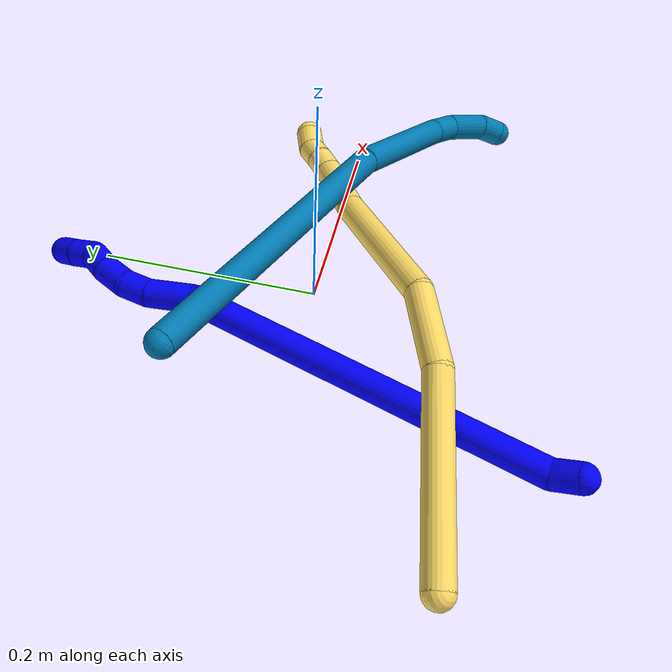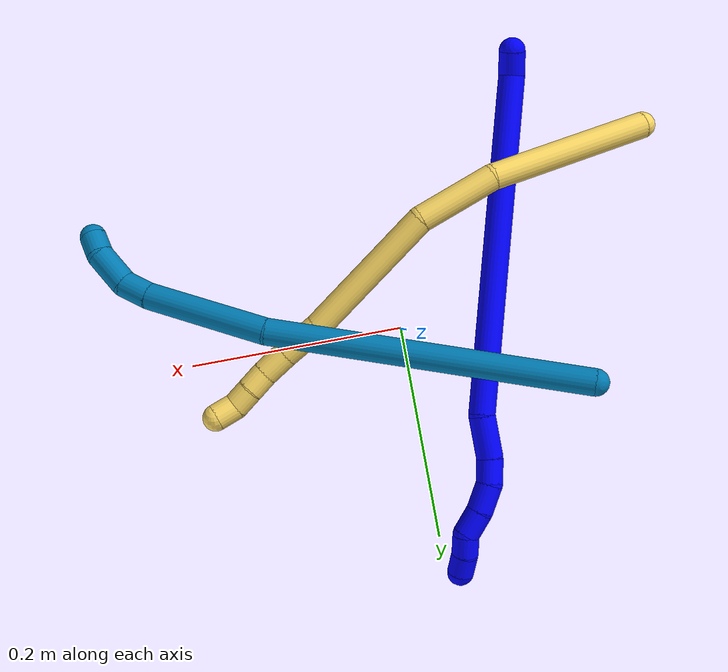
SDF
<sdf version="1.7">
 <world name="default">
  <model name="1">
   <static>0</static>
   <link name="1">
    <collision name="collision-cylinder-e_1_1_4">
     <pose>0.001793 0.009902 -0.005923 -2.10984 0.15415 -0.270697</pose>
     <geometry><cylinder><radius>0.0125</radius><length>0.023353</length></cylinder></geometry>
     <surface>
      <friction><ode><mu>1.16</mu><mu2>1.16</mu2><slip1>0</slip1><slip2>0</slip2></ode></friction>
      <contact><ode><kp>1e+06</kp><kd>1</kd><max_vel>0</max_vel><min_depth>0.001</min_depth></ode></contact>
     </surface>
    </collision>
    <visual name="visual-cylinder-e_1_1_4">
     <pose>0.001793 0.009902 -0.005923 -2.10984 0.15415 -0.270697</pose>
     <geometry><cylinder><radius>0.0125</radius><length>0.023353</length></cylinder></geometry>
     <material><ambient>0 0 1 1</ambient></material>
    </visual>
    <collision name="collision-cylinder-e_2_4_5">
     <pose>0.072405 0.161496 -0.038944 -1.75977 0.445119 -0.5343</pose>
     <geometry><cylinder><radius>0.0125</radius><length>0.319669</length></cylinder></geometry>
     <surface>
      <friction><ode><mu>1.16</mu><mu2>1.16</mu2><slip1>0</slip1><slip2>0</slip2></ode></friction>
      <contact><ode><kp>1e+06</kp><kd>1</kd><max_vel>0</max_vel><min_depth>0.001</min_depth></ode></contact>
     </surface>
    </collision>
    <visual name="visual-cylinder-e_2_4_5">
     <pose>0.072405 0.161496 -0.038944 -1.75977 0.445119 -0.5343</pose>
     <geometry><cylinder><radius>0.0125</radius><length>0.319669</length></cylinder></geometry>
     <material><ambient>0 0 1 1</ambient></material>
    </visual>
    <collision name="collision-cylinder-e_3_5_6">
     <pose>0.143889 0.323048 -0.070218 -1.778 0.130573 -0.160758</pose>
     <geometry><cylinder><radius>0.0125</radius><length>0.040936</length></cylinder></geometry>
     <surface>
      <friction><ode><mu>1.16</mu><mu2>1.16</mu2><slip1>0</slip1><slip2>0</slip2></ode></friction>
      <contact><ode><kp>1e+06</kp><kd>1</kd><max_vel>0</max_vel><min_depth>0.001</min_depth></ode></contact>
     </surface>
    </collision>
    <visual name="visual-cylinder-e_3_5_6">
     <pose>0.143889 0.323048 -0.070218 -1.778 0.130573 -0.160758</pose>
     <geometry><cylinder><radius>0.0125</radius><length>0.040936</length></cylinder></geometry>
     <material><ambient>0 0 1 1</ambient></material>
    </visual>
    <collision name="collision-cylinder-e_4_6_7">
     <pose>0.150832 0.353747 -0.076308 -1.74563 0.370662 -0.439777</pose>
     <geometry><cylinder><radius>0.0125</radius><length>0.023621</length></cylinder></geometry>
     <surface>
      <friction><ode><mu>1.16</mu><mu2>1.16</mu2><slip1>0</slip1><slip2>0</slip2></ode></friction>
      <contact><ode><kp>1e+06</kp><kd>1</kd><max_vel>0</max_vel><min_depth>0.001</min_depth></ode></contact>
     </surface>
    </collision>
    <visual name="visual-cylinder-e_4_6_7">
     <pose>0.150832 0.353747 -0.076308 -1.74563 0.370662 -0.439777</pose>
     <geometry><cylinder><radius>0.0125</radius><length>0.023621</length></cylinder></geometry>
     <material><ambient>0 0 1 1</ambient></material>
    </visual>
    <collision name="collision-cylinder-e_5_7_8">
     <pose>0.16307 0.374736 -0.082723 -1.98815 0.622027 -0.917921</pose>
     <geometry><cylinder><radius>0.0125</radius><length>0.02732</length></cylinder></geometry>
     <surface>
      <friction><ode><mu>1.16</mu><mu2>1.16</mu2><slip1>0</slip1><slip2>0</slip2></ode></friction>
      <contact><ode><kp>1e+06</kp><kd>1</kd><max_vel>0</max_vel><min_depth>0.001</min_depth></ode></contact>
     </surface>
    </collision>
    <visual name="visual-cylinder-e_5_7_8">
     <pose>0.16307 0.374736 -0.082723 -1.98815 0.622027 -0.917921</pose>
     <geometry><cylinder><radius>0.0125</radius><length>0.02732</length></cylinder></geometry>
     <material><ambient>0 0 1 1</ambient></material>
    </visual>
    <collision name="collision-cylinder-e_6_8_9">
     <pose>0.179527 0.392421 -0.092339 -2.1672 0.750684 -1.27895</pose>
     <geometry><cylinder><radius>0.0125</radius><length>0.024914</length></cylinder></geometry>
     <surface>
      <friction><ode><mu>1.16</mu><mu2>1.16</mu2><slip1>0</slip1><slip2>0</slip2></ode></friction>
      <contact><ode><kp>1e+06</kp><kd>1</kd><max_vel>0</max_vel><min_depth>0.001</min_depth></ode></contact>
     </surface>
    </collision>
    <visual name="visual-cylinder-e_6_8_9">
     <pose>0.179527 0.392421 -0.092339 -2.1672 0.750684 -1.27895</pose>
     <geometry><cylinder><radius>0.0125</radius><length>0.024914</length></cylinder></geometry>
     <material><ambient>0 0 1 1</ambient></material>
    </visual>
    <collision name="collision-cylinder-e_7_9_10">
     <pose>0.190429 0.408597 -0.102073 -2.0617 0.240753 -0.398285</pose>
     <geometry><cylinder><radius>0.0125</radius><length>0.020174</length></cylinder></geometry>
     <surface>
      <friction><ode><mu>1.16</mu><mu2>1.16</mu2><slip1>0</slip1><slip2>0</slip2></ode></friction>
      <contact><ode><kp>1e+06</kp><kd>1</kd><max_vel>0</max_vel><min_depth>0.001</min_depth></ode></contact>
     </surface>
    </collision>
    <visual name="visual-cylinder-e_7_9_10">
     <pose>0.190429 0.408597 -0.102073 -2.0617 0.240753 -0.398285</pose>
     <geometry><cylinder><radius>0.0125</radius><length>0.020174</length></cylinder></geometry>
     <material><ambient>0 0 1 1</ambient></material>
    </visual>
    <collision name="collision-cylinder-e_8_10_2">
     <pose>0.195998 0.424759 -0.112482 -2.22684 0.321639 -0.63676</pose>
     <geometry><cylinder><radius>0.0125</radius><length>0.020013</length></cylinder></geometry>
     <surface>
      <friction><ode><mu>1.16</mu><mu2>1.16</mu2><slip1>0</slip1><slip2>0</slip2></ode></friction>
      <contact><ode><kp>1e+06</kp><kd>1</kd><max_vel>0</max_vel><min_depth>0.001</min_depth></ode></contact>
     </surface>
    </collision>
    <visual name="visual-cylinder-e_8_10_2">
     <pose>0.195998 0.424759 -0.112482 -2.22684 0.321639 -0.63676</pose>
     <geometry><cylinder><radius>0.0125</radius><length>0.020013</length></cylinder></geometry>
     <material><ambient>0 0 1 1</ambient></material>
    </visual>
    <collision name="collision-sphere-2">
     <pose>0.199161 0.432282 -0.118273 0 -0 0</pose>
     <geometry><sphere><radius>0.0125</radius></sphere></geometry>
     <surface>
      <friction><ode><mu>1.16</mu><mu2>1.16</mu2><slip1>0</slip1><slip2>0</slip2></ode></friction>
      <contact><ode><kp>1e+06</kp><kd>1</kd><max_vel>0</max_vel><min_depth>0.001</min_depth></ode></contact>
     </surface>
    </collision>
    <visual name="visual-sphere-2">
     <pose>0.199161 0.432282 -0.118273 0 -0 0</pose>
     <geometry><sphere><radius>0.0125</radius></sphere></geometry>
     <material><ambient>0 0 1 1</ambient></material>
    </visual>
    <collision name="collision-sphere-10">
     <pose>0.192834 0.417236 -0.106691 0 -0 0</pose>
     <geometry><sphere><radius>0.0125</radius></sphere></geometry>
     <surface>
      <friction><ode><mu>1.16</mu><mu2>1.16</mu2><slip1>0</slip1><slip2>0</slip2></ode></friction>
      <contact><ode><kp>1e+06</kp><kd>1</kd><max_vel>0</max_vel><min_depth>0.001</min_depth></ode></contact>
     </surface>
    </collision>
    <visual name="visual-sphere-10">
     <pose>0.192834 0.417236 -0.106691 0 -0 0</pose>
     <geometry><sphere><radius>0.0125</radius></sphere></geometry>
     <material><ambient>0 0 1 1</ambient></material>
    </visual>
    <collision name="collision-sphere-9">
     <pose>0.188024 0.399958 -0.097455 0 -0 0</pose>
     <geometry><sphere><radius>0.0125</radius></sphere></geometry>
     <surface>
      <friction><ode><mu>1.16</mu><mu2>1.16</mu2><slip1>0</slip1><slip2>0</slip2></ode></friction>
      <contact><ode><kp>1e+06</kp><kd>1</kd><max_vel>0</max_vel><min_depth>0.001</min_depth></ode></contact>
     </surface>
    </collision>
    <visual name="visual-sphere-9">
     <pose>0.188024 0.399958 -0.097455 0 -0 0</pose>
     <geometry><sphere><radius>0.0125</radius></sphere></geometry>
     <material><ambient>0 0 1 1</ambient></material>
    </visual>
    <collision name="collision-sphere-4">
     <pose>0.003586 0.019804 -0.011845 0 -0 0</pose>
     <geometry><sphere><radius>0.0125</radius></sphere></geometry>
     <surface>
      <friction><ode><mu>1.16</mu><mu2>1.16</mu2><slip1>0</slip1><slip2>0</slip2></ode></friction>
      <contact><ode><kp>1e+06</kp><kd>1</kd><max_vel>0</max_vel><min_depth>0.001</min_depth></ode></contact>
     </surface>
    </collision>
    <visual name="visual-sphere-4">
     <pose>0.003586 0.019804 -0.011845 0 -0 0</pose>
     <geometry><sphere><radius>0.0125</radius></sphere></geometry>
     <material><ambient>0 0 1 1</ambient></material>
    </visual>
    <collision name="collision-sphere-1">
     <geometry><sphere><radius>0.0125</radius></sphere></geometry>
     <surface>
      <friction><ode><mu>1.16</mu><mu2>1.16</mu2><slip1>0</slip1><slip2>0</slip2></ode></friction>
      <contact><ode><kp>1e+06</kp><kd>1</kd><max_vel>0</max_vel><min_depth>0.001</min_depth></ode></contact>
     </surface>
    </collision>
    <visual name="visual-sphere-1">
     <geometry><sphere><radius>0.0125</radius></sphere></geometry>
     <material><ambient>0 0 1 1</ambient></material>
    </visual>
    <collision name="collision-sphere-8">
     <pose>0.171029 0.384885 -0.087223 0 -0 0</pose>
     <geometry><sphere><radius>0.0125</radius></sphere></geometry>
     <surface>
      <friction><ode><mu>1.16</mu><mu2>1.16</mu2><slip1>0</slip1><slip2>0</slip2></ode></friction>
      <contact><ode><kp>1e+06</kp><kd>1</kd><max_vel>0</max_vel><min_depth>0.001</min_depth></ode></contact>
     </surface>
    </collision>
    <visual name="visual-sphere-8">
     <pose>0.171029 0.384885 -0.087223 0 -0 0</pose>
     <geometry><sphere><radius>0.0125</radius></sphere></geometry>
     <material><ambient>0 0 1 1</ambient></material>
    </visual>
    <collision name="collision-sphere-5">
     <pose>0.141224 0.303188 -0.066044 0 -0 0</pose>
     <geometry><sphere><radius>0.0125</radius></sphere></geometry>
     <surface>
      <friction><ode><mu>1.16</mu><mu2>1.16</mu2><slip1>0</slip1><slip2>0</slip2></ode></friction>
      <contact><ode><kp>1e+06</kp><kd>1</kd><max_vel>0</max_vel><min_depth>0.001</min_depth></ode></contact>
     </surface>
    </collision>
    <visual name="visual-sphere-5">
     <pose>0.141224 0.303188 -0.066044 0 -0 0</pose>
     <geometry><sphere><radius>0.0125</radius></sphere></geometry>
     <material><ambient>0 0 1 1</ambient></material>
    </visual>
    <collision name="collision-sphere-6">
     <pose>0.146554 0.342907 -0.074393 0 -0 0</pose>
     <geometry><sphere><radius>0.0125</radius></sphere></geometry>
     <surface>
      <friction><ode><mu>1.16</mu><mu2>1.16</mu2><slip1>0</slip1><slip2>0</slip2></ode></friction>
      <contact><ode><kp>1e+06</kp><kd>1</kd><max_vel>0</max_vel><min_depth>0.001</min_depth></ode></contact>
     </surface>
    </collision>
    <visual name="visual-sphere-6">
     <pose>0.146554 0.342907 -0.074393 0 -0 0</pose>
     <geometry><sphere><radius>0.0125</radius></sphere></geometry>
     <material><ambient>0 0 1 1</ambient></material>
    </visual>
    <collision name="collision-sphere-7">
     <pose>0.15511 0.364588 -0.078223 0 -0 0</pose>
     <geometry><sphere><radius>0.0125</radius></sphere></geometry>
     <surface>
      <friction><ode><mu>1.16</mu><mu2>1.16</mu2><slip1>0</slip1><slip2>0</slip2></ode></friction>
      <contact><ode><kp>1e+06</kp><kd>1</kd><max_vel>0</max_vel><min_depth>0.001</min_depth></ode></contact>
     </surface>
    </collision>
    <visual name="visual-sphere-7">
     <pose>0.15511 0.364588 -0.078223 0 -0 0</pose>
     <geometry><sphere><radius>0.0125</radius></sphere></geometry>
     <material><ambient>0 0 1 1</ambient></material>
    </visual>
    <inertial>
     <pose>0.098665 0.22039 -0.052271 0 -0 0</pose>
     <mass>0.5</mass>
     <inertia>
      <ixx>0.000891</ixx>
      <ixy>0</ixy>
      <ixz>0</ixz>
      <iyy>-0.001085</iyy>
      <iyz>0</iyz>
      <izz>-0.003633</izz>
     </inertia>
    </inertial>
   </link>
   <pose>-0.149076 -0.236569 0.019902 0.065143 -0.385436 0.181761</pose>
  </model>
  <model name="5">
   <static>0</static>
   <link name="5">
    <collision name="collision-cylinder-e_1_1_4">
     <pose>0.074936 0.028104 0.008711 -1.27024 1.19665 -0.931108</pose>
     <geometry><cylinder><radius>0.0125</radius><length>0.161011</length></cylinder></geometry>
     <surface>
      <friction><ode><mu>1.16</mu><mu2>1.16</mu2><slip1>0</slip1><slip2>0</slip2></ode></friction>
      <contact><ode><kp>1e+06</kp><kd>1</kd><max_vel>0</max_vel><min_depth>0.001</min_depth></ode></contact>
     </surface>
    </collision>
    <visual name="visual-cylinder-e_1_1_4">
     <pose>0.074936 0.028104 0.008711 -1.27024 1.19665 -0.931108</pose>
     <geometry><cylinder><radius>0.0125</radius><length>0.161011</length></cylinder></geometry>
     <material><ambient>1 0.858824 0.4 1</ambient></material>
    </visual>
    <collision name="collision-cylinder-e_2_4_5">
     <pose>0.184969 0.069731 0.01149 -1.9842 1.17254 -1.58728</pose>
     <geometry><cylinder><radius>0.0125</radius><length>0.076155</length></cylinder></geometry>
     <surface>
      <friction><ode><mu>1.16</mu><mu2>1.16</mu2><slip1>0</slip1><slip2>0</slip2></ode></friction>
      <contact><ode><kp>1e+06</kp><kd>1</kd><max_vel>0</max_vel><min_depth>0.001</min_depth></ode></contact>
     </surface>
    </collision>
    <visual name="visual-cylinder-e_2_4_5">
     <pose>0.184969 0.069731 0.01149 -1.9842 1.17254 -1.58728</pose>
     <geometry><cylinder><radius>0.0125</radius><length>0.076155</length></cylinder></geometry>
     <material><ambient>1 0.858824 0.4 1</ambient></material>
    </visual>
    <collision name="collision-cylinder-e_3_5_6">
     <pose>0.273841 0.108723 -0.027222 -2.48104 0.913399 -1.92317</pose>
     <geometry><cylinder><radius>0.0125</radius><length>0.135864</length></cylinder></geometry>
     <surface>
      <friction><ode><mu>1.16</mu><mu2>1.16</mu2><slip1>0</slip1><slip2>0</slip2></ode></friction>
      <contact><ode><kp>1e+06</kp><kd>1</kd><max_vel>0</max_vel><min_depth>0.001</min_depth></ode></contact>
     </surface>
    </collision>
    <visual name="visual-cylinder-e_3_5_6">
     <pose>0.273841 0.108723 -0.027222 -2.48104 0.913399 -1.92317</pose>
     <geometry><cylinder><radius>0.0125</radius><length>0.135864</length></cylinder></geometry>
     <material><ambient>1 0.858824 0.4 1</ambient></material>
    </visual>
    <collision name="collision-cylinder-e_4_6_7">
     <pose>0.344231 0.14063 -0.068044 -2.46668 1.01575 -2.01662</pose>
     <geometry><cylinder><radius>0.0125</radius><length>0.039101</length></cylinder></geometry>
     <surface>
      <friction><ode><mu>1.16</mu><mu2>1.16</mu2><slip1>0</slip1><slip2>0</slip2></ode></friction>
      <contact><ode><kp>1e+06</kp><kd>1</kd><max_vel>0</max_vel><min_depth>0.001</min_depth></ode></contact>
     </surface>
    </collision>
    <visual name="visual-cylinder-e_4_6_7">
     <pose>0.344231 0.14063 -0.068044 -2.46668 1.01575 -2.01662</pose>
     <geometry><cylinder><radius>0.0125</radius><length>0.039101</length></cylinder></geometry>
     <material><ambient>1 0.858824 0.4 1</ambient></material>
    </visual>
    <collision name="collision-cylinder-e_5_7_8">
     <pose>0.371727 0.152157 -0.081324 -2.37036 0.979702 -1.84017</pose>
     <geometry><cylinder><radius>0.0125</radius><length>0.026208</length></cylinder></geometry>
     <surface>
      <friction><ode><mu>1.16</mu><mu2>1.16</mu2><slip1>0</slip1><slip2>0</slip2></ode></friction>
      <contact><ode><kp>1e+06</kp><kd>1</kd><max_vel>0</max_vel><min_depth>0.001</min_depth></ode></contact>
     </surface>
    </collision>
    <visual name="visual-cylinder-e_5_7_8">
     <pose>0.371727 0.152157 -0.081324 -2.37036 0.979702 -1.84017</pose>
     <geometry><cylinder><radius>0.0125</radius><length>0.026208</length></cylinder></geometry>
     <material><ambient>1 0.858824 0.4 1</ambient></material>
    </visual>
    <collision name="collision-cylinder-e_6_8_9">
     <pose>0.390573 0.162444 -0.090536 -2.22377 0.883152 -1.52657</pose>
     <geometry><cylinder><radius>0.0125</radius><length>0.020617</length></cylinder></geometry>
     <surface>
      <friction><ode><mu>1.16</mu><mu2>1.16</mu2><slip1>0</slip1><slip2>0</slip2></ode></friction>
      <contact><ode><kp>1e+06</kp><kd>1</kd><max_vel>0</max_vel><min_depth>0.001</min_depth></ode></contact>
     </surface>
    </collision>
    <visual name="visual-cylinder-e_6_8_9">
     <pose>0.390573 0.162444 -0.090536 -2.22377 0.883152 -1.52657</pose>
     <geometry><cylinder><radius>0.0125</radius><length>0.020617</length></cylinder></geometry>
     <material><ambient>1 0.858824 0.4 1</ambient></material>
    </visual>
    <collision name="collision-cylinder-e_7_9_10">
     <pose>0.406349 0.171912 -0.09924 -2.40696 0.886485 -1.77938</pose>
     <geometry><cylinder><radius>0.0125</radius><length>0.02016</length></cylinder></geometry>
     <surface>
      <friction><ode><mu>1.16</mu><mu2>1.16</mu2><slip1>0</slip1><slip2>0</slip2></ode></friction>
      <contact><ode><kp>1e+06</kp><kd>1</kd><max_vel>0</max_vel><min_depth>0.001</min_depth></ode></contact>
     </surface>
    </collision>
    <visual name="visual-cylinder-e_7_9_10">
     <pose>0.406349 0.171912 -0.09924 -2.40696 0.886485 -1.77938</pose>
     <geometry><cylinder><radius>0.0125</radius><length>0.02016</length></cylinder></geometry>
     <material><ambient>1 0.858824 0.4 1</ambient></material>
    </visual>
    <collision name="collision-cylinder-e_8_10_2">
     <pose>0.423612 0.180535 -0.104838 -1.76804 1.13182 -1.31827</pose>
     <geometry><cylinder><radius>0.0125</radius><length>0.020884</length></cylinder></geometry>
     <surface>
      <friction><ode><mu>1.16</mu><mu2>1.16</mu2><slip1>0</slip1><slip2>0</slip2></ode></friction>
      <contact><ode><kp>1e+06</kp><kd>1</kd><max_vel>0</max_vel><min_depth>0.001</min_depth></ode></contact>
     </surface>
    </collision>
    <visual name="visual-cylinder-e_8_10_2">
     <pose>0.423612 0.180535 -0.104838 -1.76804 1.13182 -1.31827</pose>
     <geometry><cylinder><radius>0.0125</radius><length>0.020884</length></cylinder></geometry>
     <material><ambient>1 0.858824 0.4 1</ambient></material>
    </visual>
    <collision name="collision-sphere-2">
     <pose>0.433064 0.184887 -0.105707 0 -0 0</pose>
     <geometry><sphere><radius>0.0125</radius></sphere></geometry>
     <surface>
      <friction><ode><mu>1.16</mu><mu2>1.16</mu2><slip1>0</slip1><slip2>0</slip2></ode></friction>
      <contact><ode><kp>1e+06</kp><kd>1</kd><max_vel>0</max_vel><min_depth>0.001</min_depth></ode></contact>
     </surface>
    </collision>
    <visual name="visual-sphere-2">
     <pose>0.433064 0.184887 -0.105707 0 -0 0</pose>
     <geometry><sphere><radius>0.0125</radius></sphere></geometry>
     <material><ambient>1 0.858824 0.4 1</ambient></material>
    </visual>
    <collision name="collision-sphere-10">
     <pose>0.41416 0.176183 -0.103968 0 -0 0</pose>
     <geometry><sphere><radius>0.0125</radius></sphere></geometry>
     <surface>
      <friction><ode><mu>1.16</mu><mu2>1.16</mu2><slip1>0</slip1><slip2>0</slip2></ode></friction>
      <contact><ode><kp>1e+06</kp><kd>1</kd><max_vel>0</max_vel><min_depth>0.001</min_depth></ode></contact>
     </surface>
    </collision>
    <visual name="visual-sphere-10">
     <pose>0.41416 0.176183 -0.103968 0 -0 0</pose>
     <geometry><sphere><radius>0.0125</radius></sphere></geometry>
     <material><ambient>1 0.858824 0.4 1</ambient></material>
    </visual>
    <collision name="collision-sphere-9">
     <pose>0.398539 0.167641 -0.094511 0 -0 0</pose>
     <geometry><sphere><radius>0.0125</radius></sphere></geometry>
     <surface>
      <friction><ode><mu>1.16</mu><mu2>1.16</mu2><slip1>0</slip1><slip2>0</slip2></ode></friction>
      <contact><ode><kp>1e+06</kp><kd>1</kd><max_vel>0</max_vel><min_depth>0.001</min_depth></ode></contact>
     </surface>
    </collision>
    <visual name="visual-sphere-9">
     <pose>0.398539 0.167641 -0.094511 0 -0 0</pose>
     <geometry><sphere><radius>0.0125</radius></sphere></geometry>
     <material><ambient>1 0.858824 0.4 1</ambient></material>
    </visual>
    <collision name="collision-sphere-4">
     <pose>0.149872 0.056209 0.017422 0 -0 0</pose>
     <geometry><sphere><radius>0.0125</radius></sphere></geometry>
     <surface>
      <friction><ode><mu>1.16</mu><mu2>1.16</mu2><slip1>0</slip1><slip2>0</slip2></ode></friction>
      <contact><ode><kp>1e+06</kp><kd>1</kd><max_vel>0</max_vel><min_depth>0.001</min_depth></ode></contact>
     </surface>
    </collision>
    <visual name="visual-sphere-4">
     <pose>0.149872 0.056209 0.017422 0 -0 0</pose>
     <geometry><sphere><radius>0.0125</radius></sphere></geometry>
     <material><ambient>1 0.858824 0.4 1</ambient></material>
    </visual>
    <collision name="collision-sphere-1">
     <geometry><sphere><radius>0.0125</radius></sphere></geometry>
     <surface>
      <friction><ode><mu>1.16</mu><mu2>1.16</mu2><slip1>0</slip1><slip2>0</slip2></ode></friction>
      <contact><ode><kp>1e+06</kp><kd>1</kd><max_vel>0</max_vel><min_depth>0.001</min_depth></ode></contact>
     </surface>
    </collision>
    <visual name="visual-sphere-1">
     <geometry><sphere><radius>0.0125</radius></sphere></geometry>
     <material><ambient>1 0.858824 0.4 1</ambient></material>
    </visual>
    <collision name="collision-sphere-8">
     <pose>0.382607 0.157247 -0.086561 0 -0 0</pose>
     <geometry><sphere><radius>0.0125</radius></sphere></geometry>
     <surface>
      <friction><ode><mu>1.16</mu><mu2>1.16</mu2><slip1>0</slip1><slip2>0</slip2></ode></friction>
      <contact><ode><kp>1e+06</kp><kd>1</kd><max_vel>0</max_vel><min_depth>0.001</min_depth></ode></contact>
     </surface>
    </collision>
    <visual name="visual-sphere-8">
     <pose>0.382607 0.157247 -0.086561 0 -0 0</pose>
     <geometry><sphere><radius>0.0125</radius></sphere></geometry>
     <material><ambient>1 0.858824 0.4 1</ambient></material>
    </visual>
    <collision name="collision-sphere-5">
     <pose>0.220067 0.083254 0.005557 0 -0 0</pose>
     <geometry><sphere><radius>0.0125</radius></sphere></geometry>
     <surface>
      <friction><ode><mu>1.16</mu><mu2>1.16</mu2><slip1>0</slip1><slip2>0</slip2></ode></friction>
      <contact><ode><kp>1e+06</kp><kd>1</kd><max_vel>0</max_vel><min_depth>0.001</min_depth></ode></contact>
     </surface>
    </collision>
    <visual name="visual-sphere-5">
     <pose>0.220067 0.083254 0.005557 0 -0 0</pose>
     <geometry><sphere><radius>0.0125</radius></sphere></geometry>
     <material><ambient>1 0.858824 0.4 1</ambient></material>
    </visual>
    <collision name="collision-sphere-6">
     <pose>0.327615 0.134192 -0.06 0 -0 0</pose>
     <geometry><sphere><radius>0.0125</radius></sphere></geometry>
     <surface>
      <friction><ode><mu>1.16</mu><mu2>1.16</mu2><slip1>0</slip1><slip2>0</slip2></ode></friction>
      <contact><ode><kp>1e+06</kp><kd>1</kd><max_vel>0</max_vel><min_depth>0.001</min_depth></ode></contact>
     </surface>
    </collision>
    <visual name="visual-sphere-6">
     <pose>0.327615 0.134192 -0.06 0 -0 0</pose>
     <geometry><sphere><radius>0.0125</radius></sphere></geometry>
     <material><ambient>1 0.858824 0.4 1</ambient></material>
    </visual>
    <collision name="collision-sphere-7">
     <pose>0.360846 0.147067 -0.076088 0 -0 0</pose>
     <geometry><sphere><radius>0.0125</radius></sphere></geometry>
     <surface>
      <friction><ode><mu>1.16</mu><mu2>1.16</mu2><slip1>0</slip1><slip2>0</slip2></ode></friction>
      <contact><ode><kp>1e+06</kp><kd>1</kd><max_vel>0</max_vel><min_depth>0.001</min_depth></ode></contact>
     </surface>
    </collision>
    <visual name="visual-sphere-7">
     <pose>0.360846 0.147067 -0.076088 0 -0 0</pose>
     <geometry><sphere><radius>0.0125</radius></sphere></geometry>
     <material><ambient>1 0.858824 0.4 1</ambient></material>
    </visual>
    <inertial>
     <pose>0.2233 0.089357 -0.024539 0 -0 0</pose>
     <mass>0.5</mass>
     <inertia>
      <ixx>-0.000185</ixx>
      <ixy>0</ixy>
      <ixz>0</ixz>
      <iyy>0.000281</iyy>
      <iyz>0</iyz>
      <izz>-0.000779</izz>
     </inertia>
    </inertial>
   </link>
   <pose>-0.257337 -0.147267 0.011497 0.711084 0.030825 -0.027722</pose>
  </model>
  <model name="9">
   <static>0</static>
   <link name="9">
    <collision name="collision-cylinder-e_1_1_4">
     <pose>-0.003359 -0.124659 0.080728 0.996115 -0.022616 -0.012299</pose>
     <geometry><cylinder><radius>0.0125</radius><length>0.297107</length></cylinder></geometry>
     <surface>
      <friction><ode><mu>1.16</mu><mu2>1.16</mu2><slip1>0</slip1><slip2>0</slip2></ode></friction>
      <contact><ode><kp>1e+06</kp><kd>1</kd><max_vel>0</max_vel><min_depth>0.001</min_depth></ode></contact>
     </surface>
    </collision>
    <visual name="visual-cylinder-e_1_1_4">
     <pose>-0.003359 -0.124659 0.080728 0.996115 -0.022616 -0.012299</pose>
     <geometry><cylinder><radius>0.0125</radius><length>0.297107</length></cylinder></geometry>
     <material><ambient>0 0.490196 0.709804 1</ambient></material>
    </visual>
    <collision name="collision-cylinder-e_2_4_5">
     <pose>-0.001956 -0.292281 0.201691 0.818182 0.080739 0.03502</pose>
     <geometry><cylinder><radius>0.0125</radius><length>0.118107</length></cylinder></geometry>
     <surface>
      <friction><ode><mu>1.16</mu><mu2>1.16</mu2><slip1>0</slip1><slip2>0</slip2></ode></friction>
      <contact><ode><kp>1e+06</kp><kd>1</kd><max_vel>0</max_vel><min_depth>0.001</min_depth></ode></contact>
     </surface>
    </collision>
    <visual name="visual-cylinder-e_2_4_5">
     <pose>-0.001956 -0.292281 0.201691 0.818182 0.080739 0.03502</pose>
     <geometry><cylinder><radius>0.0125</radius><length>0.118107</length></cylinder></geometry>
     <material><ambient>0 0.490196 0.709804 1</ambient></material>
    </visual>
    <collision name="collision-cylinder-e_3_5_6">
     <pose>0.005958 -0.34473 0.25121 0.796172 0.233105 0.098396</pose>
     <geometry><cylinder><radius>0.0125</radius><length>0.027286</length></cylinder></geometry>
     <surface>
      <friction><ode><mu>1.16</mu><mu2>1.16</mu2><slip1>0</slip1><slip2>0</slip2></ode></friction>
      <contact><ode><kp>1e+06</kp><kd>1</kd><max_vel>0</max_vel><min_depth>0.001</min_depth></ode></contact>
     </surface>
    </collision>
    <visual name="visual-cylinder-e_3_5_6">
     <pose>0.005958 -0.34473 0.25121 0.796172 0.233105 0.098396</pose>
     <geometry><cylinder><radius>0.0125</radius><length>0.027286</length></cylinder></geometry>
     <material><ambient>0 0.490196 0.709804 1</ambient></material>
    </visual>
    <collision name="collision-cylinder-e_4_6_7">
     <pose>0.019792 -0.364093 0.271695 0.722648 0.620961 0.241336</pose>
     <geometry><cylinder><radius>0.0125</radius><length>0.036721</length></cylinder></geometry>
     <surface>
      <friction><ode><mu>1.16</mu><mu2>1.16</mu2><slip1>0</slip1><slip2>0</slip2></ode></friction>
      <contact><ode><kp>1e+06</kp><kd>1</kd><max_vel>0</max_vel><min_depth>0.001</min_depth></ode></contact>
     </surface>
    </collision>
    <visual name="visual-cylinder-e_4_6_7">
     <pose>0.019792 -0.364093 0.271695 0.722648 0.620961 0.241336</pose>
     <geometry><cylinder><radius>0.0125</radius><length>0.036721</length></cylinder></geometry>
     <material><ambient>0 0.490196 0.709804 1</ambient></material>
    </visual>
    <collision name="collision-cylinder-e_5_7_2">
     <pose>0.037387 -0.376115 0.290349 0.280338 0.727957 0.107397</pose>
     <geometry><cylinder><radius>0.0125</radius><length>0.020779</length></cylinder></geometry>
     <surface>
      <friction><ode><mu>1.16</mu><mu2>1.16</mu2><slip1>0</slip1><slip2>0</slip2></ode></friction>
      <contact><ode><kp>1e+06</kp><kd>1</kd><max_vel>0</max_vel><min_depth>0.001</min_depth></ode></contact>
     </surface>
    </collision>
    <visual name="visual-cylinder-e_5_7_2">
     <pose>0.037387 -0.376115 0.290349 0.280338 0.727957 0.107397</pose>
     <geometry><cylinder><radius>0.0125</radius><length>0.020779</length></cylinder></geometry>
     <material><ambient>0 0.490196 0.709804 1</ambient></material>
    </visual>
    <collision name="collision-sphere-2">
     <pose>0.0443 -0.378261 0.297802 0 -0 0</pose>
     <geometry><sphere><radius>0.0125</radius></sphere></geometry>
     <surface>
      <friction><ode><mu>1.16</mu><mu2>1.16</mu2><slip1>0</slip1><slip2>0</slip2></ode></friction>
      <contact><ode><kp>1e+06</kp><kd>1</kd><max_vel>0</max_vel><min_depth>0.001</min_depth></ode></contact>
     </surface>
    </collision>
    <visual name="visual-sphere-2">
     <pose>0.0443 -0.378261 0.297802 0 -0 0</pose>
     <geometry><sphere><radius>0.0125</radius></sphere></geometry>
     <material><ambient>0 0.490196 0.709804 1</ambient></material>
    </visual>
    <collision name="collision-sphere-7">
     <pose>0.030474 -0.373969 0.282895 0 -0 0</pose>
     <geometry><sphere><radius>0.0125</radius></sphere></geometry>
     <surface>
      <friction><ode><mu>1.16</mu><mu2>1.16</mu2><slip1>0</slip1><slip2>0</slip2></ode></friction>
      <contact><ode><kp>1e+06</kp><kd>1</kd><max_vel>0</max_vel><min_depth>0.001</min_depth></ode></contact>
     </surface>
    </collision>
    <visual name="visual-sphere-7">
     <pose>0.030474 -0.373969 0.282895 0 -0 0</pose>
     <geometry><sphere><radius>0.0125</radius></sphere></geometry>
     <material><ambient>0 0.490196 0.709804 1</ambient></material>
    </visual>
    <collision name="collision-sphere-6">
     <pose>0.00911 -0.354217 0.260494 0 -0 0</pose>
     <geometry><sphere><radius>0.0125</radius></sphere></geometry>
     <surface>
      <friction><ode><mu>1.16</mu><mu2>1.16</mu2><slip1>0</slip1><slip2>0</slip2></ode></friction>
      <contact><ode><kp>1e+06</kp><kd>1</kd><max_vel>0</max_vel><min_depth>0.001</min_depth></ode></contact>
     </surface>
    </collision>
    <visual name="visual-sphere-6">
     <pose>0.00911 -0.354217 0.260494 0 -0 0</pose>
     <geometry><sphere><radius>0.0125</radius></sphere></geometry>
     <material><ambient>0 0.490196 0.709804 1</ambient></material>
    </visual>
    <collision name="collision-sphere-5">
     <pose>0.002807 -0.335244 0.241925 0 -0 0</pose>
     <geometry><sphere><radius>0.0125</radius></sphere></geometry>
     <surface>
      <friction><ode><mu>1.16</mu><mu2>1.16</mu2><slip1>0</slip1><slip2>0</slip2></ode></friction>
      <contact><ode><kp>1e+06</kp><kd>1</kd><max_vel>0</max_vel><min_depth>0.001</min_depth></ode></contact>
     </surface>
    </collision>
    <visual name="visual-sphere-5">
     <pose>0.002807 -0.335244 0.241925 0 -0 0</pose>
     <geometry><sphere><radius>0.0125</radius></sphere></geometry>
     <material><ambient>0 0.490196 0.709804 1</ambient></material>
    </visual>
    <collision name="collision-sphere-1">
     <geometry><sphere><radius>0.0125</radius></sphere></geometry>
     <surface>
      <friction><ode><mu>1.16</mu><mu2>1.16</mu2><slip1>0</slip1><slip2>0</slip2></ode></friction>
      <contact><ode><kp>1e+06</kp><kd>1</kd><max_vel>0</max_vel><min_depth>0.001</min_depth></ode></contact>
     </surface>
    </collision>
    <visual name="visual-sphere-1">
     <geometry><sphere><radius>0.0125</radius></sphere></geometry>
     <material><ambient>0 0.490196 0.709804 1</ambient></material>
    </visual>
    <collision name="collision-sphere-4">
     <pose>-0.006719 -0.249318 0.161456 0 -0 0</pose>
     <geometry><sphere><radius>0.0125</radius></sphere></geometry>
     <surface>
      <friction><ode><mu>1.16</mu><mu2>1.16</mu2><slip1>0</slip1><slip2>0</slip2></ode></friction>
      <contact><ode><kp>1e+06</kp><kd>1</kd><max_vel>0</max_vel><min_depth>0.001</min_depth></ode></contact>
     </surface>
    </collision>
    <visual name="visual-sphere-4">
     <pose>-0.006719 -0.249318 0.161456 0 -0 0</pose>
     <geometry><sphere><radius>0.0125</radius></sphere></geometry>
     <material><ambient>0 0.490196 0.709804 1</ambient></material>
    </visual>
    <inertial>
     <pose>0.000874 -0.204298 0.141341 0 -0 0</pose>
     <mass>0.5</mass>
     <inertia>
      <ixx>0.002329</ixx>
      <ixy>0</ixy>
      <ixz>0</ixz>
      <iyy>0.00125</iyy>
      <iyz>0</iyz>
      <izz>0.002009</izz>
     </inertia>
    </inertial>
   </link>
   <pose>-0.158161 0.076899 0.091004 -2.65818 -0.179308 -1.90982</pose>
  </model>
 </world>
</sdf>
